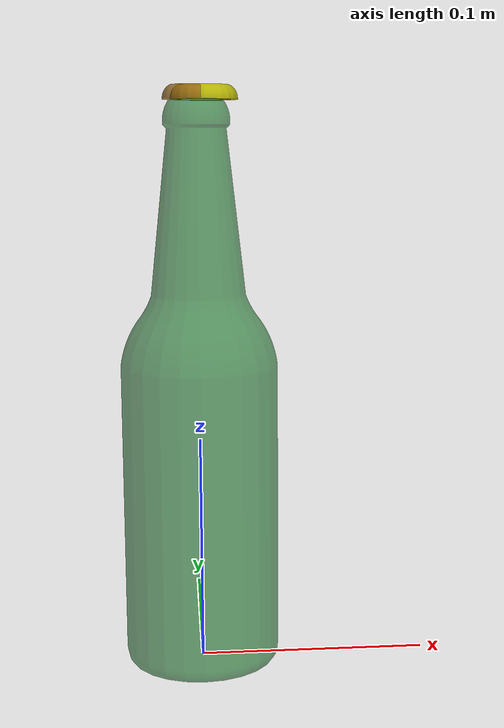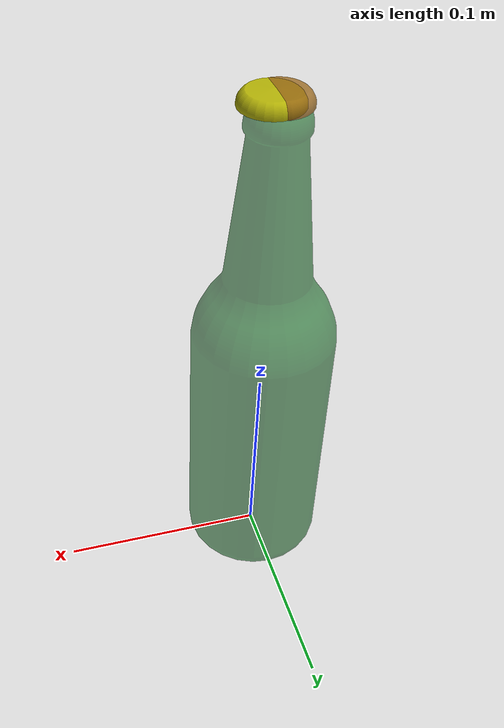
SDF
<?xml version='1.0'?>
<sdf version='1.6'>
  <model name='bottle_beer'>
    <link name='body'>
      <!-- Position will be set by spawn script -->
      <pose>0 0 0 0 0 0</pose>

      <!-- ========= VISUALS ========= -->
      <visual name='bottle_visual'>
        <geometry>
          <mesh>
            <uri>model://bottle_beer/meshes/bottle.dae</uri>
            <scale>1 1 1</scale>
          </mesh>
        </geometry>
        <material>
          <lighting>1</lighting>
          <ambient>0.035 0.415 0.098 1</ambient>
          <diffuse>0.035 0.415 0.098 1</diffuse>
          <specular>0.01 0.01 0.01 1</specular>
          <emissive>0 0 0 1</emissive>
          <shader type='vertex'>
            <normal_map>__default__</normal_map>
          </shader>
        </material>
        <cast_shadows>1</cast_shadows>
        <transparency>0.4</transparency>
      </visual>

      <visual name='beer_content_visual'>
        <geometry>
          <mesh>
            <uri>model://bottle_beer/meshes/beer_bottle.dae</uri>
            <scale>1 1 1</scale>
          </mesh>
        </geometry>
        <material>
          <lighting>1</lighting>
          <ambient>0.6 0.4 0.1 1</ambient>
          <diffuse>0.6 0.4 0.1 1</diffuse>
          <specular>0.01 0.01 0.01 1</specular>
          <emissive>0 0 0 1</emissive>
          <shader type='vertex'>
            <normal_map>__default__</normal_map>
          </shader>
        </material>
        <cast_shadows>1</cast_shadows>
        <transparency>0.2</transparency>
      </visual>

      <visual name='cap_visual'>
        <geometry>
          <mesh>
            <uri>model://bottle_beer/meshes/cap.dae</uri>
            <scale>1 1 1</scale>
          </mesh>
        </geometry>
        <material>
          <lighting>1</lighting>
          <ambient>0.694 0.686 0.023 1</ambient>
          <diffuse>0.694 0.686 0.023 1</diffuse>
          <specular>0.01 0.01 0.01 1</specular>
          <emissive>0 0 0 1</emissive>
          <shader type='vertex'>
            <normal_map>__default__</normal_map>
          </shader>
        </material>
        <cast_shadows>1</cast_shadows>
        <transparency>0</transparency>
      </visual>

      <!-- ========= COLLISION ========= -->
      <collision name='collision'>
        <laser_retro>0</laser_retro>
        <max_contacts>20</max_contacts>
        <pose>0 0 0 0 0 0</pose>
        <geometry>
          <mesh>
            <uri>model://bottle_beer/meshes/bottle.dae</uri>
            <scale>1 1 1</scale>
          </mesh>
        </geometry>
        <surface>
          <contact>
            <ode>
              <kp>1e7</kp>
              <kd>1.0</kd>
              <max_vel>0.2</max_vel>
              <min_depth>0.001</min_depth>
            </ode>
          </contact>
          <friction>
            <ode>
              <mu>0.5</mu>
              <mu2>0.5</mu2>
            </ode>
          </friction>
        </surface>
      </collision>

      <!-- ========= INERTIA ========= -->
      <inertial auto="true"/>
    </link>

    <static>0</static>
    <allow_auto_disable>1</allow_auto_disable>
  </model>
</sdf>
